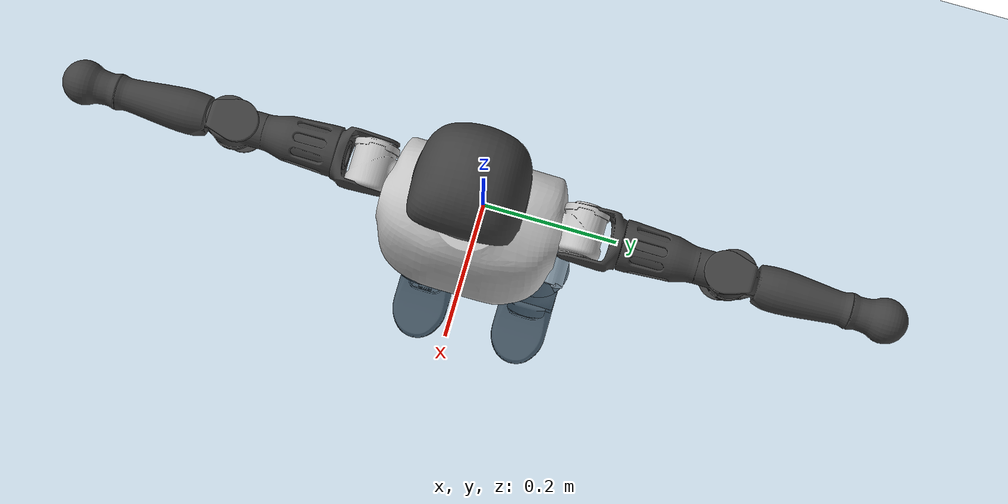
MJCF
<mujoco model="T1">
  <compiler angle="radian" assetdir="assets" balanceinertia="true" inertiafromgeom="false"/>

  <option timestep="0.005" density="1.2" viscosity="2e-05"/>

  <size nkey="1"/>

  <visual>
    <quality shadowsize="8192"/>
    <map shadowclip="0.5"/>
  </visual>

  <default>
    <default class="/">
      <joint armature="0.01" damping="0.01" frictionloss="0.1"/>
      <geom contype="0" conaffinity="0" group="1" solref="-1000 -80"/>
      <site size="0.01 0.005 0.005" group="5"/>
      <general forcelimited="true" biastype="affine" gainprm="25" biasprm="0 -25 -0.6"/>
      <default class="t1">
        <geom rgba="0.25 0.25 0.25 1"/>
        <default class="visual">
          <geom type="mesh" group="2"/>
        </default>
        <default class="collision">
          <geom group="3"/>
        </default>
        <default class="foot">
          <geom size="0.1115 0.05 0.015" type="box" condim="6" group="4" priority="1" solimp="0.015 1 0.015"/>
        </default>
        <default class="reward_collision_sphere">
          <geom group="5" rgba="1 0 0 1"/>
        </default>
      </default>
    </default>
  </default>

  <asset>
    <texture type="skybox" colorspace="auto" name="//unnamed_texture_0" builtin="gradient" rgb1="0.95 0.95 0.95" rgb2="0.95 0.95 0.95" width="100" height="600"/>
    <texture type="2d" colorspace="auto" name="texplane" builtin="checker" rgb1="0.345 0.575 0.748" rgb2="0.345 0.575 0.748" markrgb="1 1 1" width="512" height="512"/>
    <material name="MatPlane" class="/" texture="texplane" texuniform="true" texrepeat="2 2" specular="0.9"/>
    <mesh name="Trunk" class="/" file="Trunk.stl"/>
    <mesh name="H1" class="/" file="H1.stl"/>
    <mesh name="H2" class="/" file="H2.stl"/>
    <mesh name="AL1" class="/" file="AL1.stl"/>
    <mesh name="AL2" class="/" file="AL2.stl"/>
    <mesh name="AL3" class="/" file="AL3.stl"/>
    <mesh name="left_hand_link" class="/" file="left_hand_link.stl"/>
    <mesh name="AR1" class="/" file="AR1.stl"/>
    <mesh name="AR2" class="/" file="AR2.stl"/>
    <mesh name="AR3" class="/" file="AR3.stl"/>
    <mesh name="right_hand_link" class="/" file="right_hand_link.stl"/>
    <mesh name="Waist" class="/" file="Waist.stl"/>
    <mesh name="Hip_Pitch_Left" class="/" file="Hip_Pitch_Left.stl"/>
    <mesh name="Hip_Roll_Left" class="/" file="Hip_Roll_Left.stl"/>
    <mesh name="Hip_Yaw_Left" class="/" file="Hip_Yaw_Left.stl"/>
    <mesh name="Shank_Left" class="/" file="Shank_Left.stl"/>
    <mesh name="Ankle_Cross_Left" class="/" file="Ankle_Cross_Left.stl"/>
    <mesh name="left_foot_link" class="/" file="left_foot_link.stl"/>
    <mesh name="Hip_Pitch_Right" class="/" file="Hip_Pitch_Right.stl"/>
    <mesh name="Hip_Roll_Right" class="/" file="Hip_Roll_Right.stl"/>
    <mesh name="Hip_Yaw_Right" class="/" file="Hip_Yaw_Right.stl"/>
    <mesh name="Shank_Right" class="/" file="Shank_Right.stl"/>
    <mesh name="Ankle_Cross_Right" class="/" file="Ankle_Cross_Right.stl"/>
    <mesh name="right_foot_link" class="/" file="right_foot_link.stl"/>
  </asset>

  <worldbody>
    <geom name="floor" class="/" size="100 100 0.125" type="plane" group="0" material="MatPlane"/>
    <light name="toplight_shadow" class="/" pos="0 0 5" dir="0.0990148 0.0990148 -0.990148" type="directional" ambient="0.04 0.04 0.04" diffuse="0.55 0.55 0.55" specular="0.12 0.12 0.12"/>
    <light name="toplight_fill" class="/" pos="0 0 5" dir="0.0990148 0.0990148 -0.990148" type="directional" castshadow="false" ambient="0.04 0.04 0.04" diffuse="0.3 0.3 0.3" specular="0.08 0.08 0.08"/>
    <body name="trunk" childclass="t1" pos="0.00196383 -0.000137911 0.000971827" quat="1 0.000629122 0.000325803 0.000416819">
      <inertial pos="0.0310922 -0.000599167 0.107534" quat="0.999806 0.0110089 -0.0160483 0.00308846" mass="7.03084" diaginertia="0.0054441 0.0527568 0.0687077"/>
      <joint name="//unnamed_joint_0" type="free" armature="0" damping="0" frictionloss="0"/>
      <geom name="//unnamed_geom_1" class="visual" rgba="0.76 0.76 0.76 1" mesh="Trunk"/>
      <geom name="//unnamed_geom_2" class="collision" size="0.0635608 0.0847477 0.127122" pos="0.0340289 0 0.125665" type="box"/>
      <geom name="//unnamed_geom_3" class="reward_collision_sphere" size="0.0974598" pos="0.0340289 0 0.104721"/>
      <geom name="//unnamed_geom_4" class="reward_collision_sphere" size="0.0127122" pos="0.0340289 0.0788862 0"/>
      <geom name="//unnamed_geom_5" class="reward_collision_sphere" size="0.0127122" pos="0.0340289 -0.0788862 0"/>
      <geom name="//unnamed_geom_6" class="reward_collision_sphere" size="0.0127122" pos="0.0340289 0.0993038 0.188498"/>
      <geom name="//unnamed_geom_7" class="reward_collision_sphere" size="0.0127122" pos="0.0340289 -0.0993038 0.188498"/>
      <site name="imu" pos="0.0037037 -0.0137982 0.0074787" size="0.00847477"/>
      <camera name="track" pos="0 -1.85615 0" quat="0.707107 0.707107 0 0" mode="trackcom"/>
      <camera name="ego_camera" pos="0.069192 0 0.439828" quat="-0.5 -0.5 0.5 0.5"/>
      <body name="H1" pos="0.0372663 0.000901528 0.256219" quat="0.999999 0.000426212 -0.000488859 0.00103582">
        <inertial pos="-0.00279324 0.000262695 0.0573829" quat="0.762471 -0.00969522 0.00326598 0.646941" mass="0.27668" diaginertia="1.42041e-05 0.000158445 0.000193361"/>
        <joint name="AAHead_yaw" pos="0 0 0" axis="0.0012451 -0.00147654 0.999998" stiffness="0.00155641" range="-1.5617 1.62108" armature="0.00847305" damping="0.0183259" frictionloss="0.0952471"/>
        <geom name="//unnamed_geom_8" class="visual" mesh="H1"/>
        <body name="H2" pos="0.00180438 0.000684014 0.0647352" quat="1 0.000395355 0.000137728 -0.000189682">
          <inertial pos="0.00480302 0.00255405 0.103948" quat="0.987201 0.107837 -0.081659 -0.0844871" mass="0.376164" diaginertia="0.000111721 0.00126878 0.00217135"/>
          <joint name="Head_pitch" pos="0 0 0" axis="0.00104771 -0.999999 0.00109236" range="-1.17402 0.349611" armature="0.00917587" damping="0.0122397" frictionloss="0.0866771"/>
          <geom name="//unnamed_geom_9" class="visual" mesh="H2"/>
          <geom name="//unnamed_geom_10" class="collision" size="0.0677981" pos="0.00567148 0 0.115193"/>
          <geom name="//unnamed_geom_11" class="reward_collision_sphere" size="0.0762729" pos="0.011343 0 0.104721"/>
        </body>
      </body>
      <body name="AL1" pos="0.0365032 0.0982669 0.231935" quat="1 5.38418e-05 0.00046655 2.00263e-07">
        <inertial pos="0.000969166 0.0409905 -0.00112237" quat="0.498096 0.501804 -0.498925 0.501165" mass="0.343629" diaginertia="8.50672e-05 0.000945875 0.00038468"/>
        <joint name="Left_Shoulder_Pitch" pos="0 0 0" axis="-0.00836982 0.999953 0.00480919" stiffness="0.00505109" range="-3.25239 1.22475" armature="0.00927988" damping="0.0145403" frictionloss="0.0771464"/>
        <geom name="//unnamed_geom_12" class="visual" rgba="0.76 0.76 0.76 1" mesh="AL1"/>
        <body name="AL2" pos="0.00305641 0.0441095 0.00223054" quat="0.999999 -0.000341969 0.000930868 0.00113924">
          <inertial pos="0.00216464 0.0327686 0.00250974" quat="0.487809 0.511971 -0.487752 0.511885" mass="0.0953987" diaginertia="2.36967e-05 0.00023164 0.000214976"/>
          <joint name="Left_Shoulder_Roll" pos="0 0 0" axis="-0.999935 0.00117854 0.0113625" range="-1.53392 1.73573" armature="0.00871607" damping="0" frictionloss="0.082219"/>
          <geom name="//unnamed_geom_13" class="visual" mesh="AL2"/>
          <body name="AL3" pos="-0.000569208 0.0571198 0.00297674" quat="0.999999 0.00036128 0.00100854 0.000475865">
            <inertial pos="-5.35059e-05 0.0813503 0.000912579" quat="0.706816 0.707381 -0.00451534 -0.00164463" mass="0.628868" diaginertia="0.000785376 0.00913526 0.000806363"/>
            <joint name="Left_Elbow_Pitch" pos="0 0 0" axis="-0.00417354 -0.999991 0.00122917" range="-2.27654 2.2809" armature="0.00835163" damping="0" frictionloss="0.0888238"/>
            <geom name="//unnamed_geom_14" class="visual" mesh="AL3"/>
            <geom name="//unnamed_geom_15" class="collision" size="0.0254243 0.0635608" pos="0 0.0464036 0" quat="0.707105 0.707108 0 0" type="cylinder"/>
            <geom name="//unnamed_geom_16" class="reward_collision_sphere" size="0.0305092"/>
            <body name="left_hand_link" pos="0.00358009 0.137098 0.00112149" quat="1 0.000277153 0.00051432 0.000254955">
              <inertial pos="-0.00212487 0.101198 -0.000715318" quat="0.710294 0.703778 0.00989952 -0.00897834" mass="0.192951" diaginertia="0.000479113 0.00553965 0.000269628"/>
              <joint name="Left_Elbow_Yaw" pos="0 0 0" axis="-0.00722038 -0.00239235 0.999971" stiffness="0.0113537" range="-2.39054 -0.0448625" armature="0.00906389" damping="0.0175972" frictionloss="0.0891919"/>
              <geom name="//unnamed_geom_17" class="visual" mesh="left_hand_link"/>
              <geom name="//unnamed_geom_18" class="collision" size="0.0254243 0.0741542" pos="0 0.120649 0" quat="0.707105 0.707108 0 0" type="cylinder"/>
              <geom name="//unnamed_geom_19" class="reward_collision_sphere" size="0.0423738"/>
              <geom name="//unnamed_geom_20" class="reward_collision_sphere" size="0.0296617" pos="0 0.102088 0"/>
              <geom name="//unnamed_geom_21" class="reward_collision_sphere" size="0.0296617" pos="0 0.199536 0"/>
            </body>
          </body>
        </body>
      </body>
      <body name="AR1" pos="0.0287737 -0.0982177 0.229232" quat="0.999999 0.000675579 -7.96989e-05 0.000867769">
        <inertial pos="0.00188598 -0.0394256 0.000228229" quat="0.504049 0.495402 -0.50409 0.496392" mass="0.321677" diaginertia="7.7392e-05 0.000894335 0.000371562"/>
        <joint name="Right_Shoulder_Pitch" pos="0 0 0" axis="0.00208372 -0.999996 0.00188604" stiffness="0.00525403" range="-1.23775 3.36103" armature="0.0091532" damping="0.0135514" frictionloss="0.0746925"/>
        <geom name="//unnamed_geom_22" class="visual" rgba="0.76 0.76 0.76 1" mesh="AR1"/>
        <body name="AR2" pos="-0.00343181 -0.040005 0.000132183" quat="1 1.07673e-06 -0.000323909 -5.14951e-05">
          <inertial pos="-0.000372623 -0.0340662 0.00105578" quat="0.512076 0.487444 -0.511623 0.488282" mass="0.0985124" diaginertia="2.40506e-05 0.000246787 0.000235579"/>
          <joint name="Right_Shoulder_Roll" pos="0 0 0" axis="-0.999799 0.0153848 -0.012823" stiffness="0.00565217" range="-1.76964 1.54989" armature="0.00949796" damping="0.00320254" frictionloss="0.0876218"/>
          <geom name="//unnamed_geom_23" class="visual" mesh="AR2"/>
          <body name="AR3" pos="-0.00225951 -0.0543307 0.00208685" quat="1 -0.000117327 4.28275e-05 5.82328e-05">
            <inertial pos="0.000364065 -0.0766329 0.000417303" quat="0.708734 0.705364 0.0114131 0.00519508" mass="0.618218" diaginertia="0.000738196 0.00875361 0.000771826"/>
            <joint name="Right_Elbow_Pitch" pos="0 0 0" axis="0.0125572 0.999921 8.58411e-05" range="-2.27783 2.2268" armature="0.00865604" damping="0" frictionloss="0.0872985"/>
            <geom name="//unnamed_geom_24" class="visual" mesh="AR3"/>
            <geom name="//unnamed_geom_25" class="collision" size="0.0254243 0.0635608" pos="0 -0.0464036 0" quat="0.707105 0.707108 0 0" type="cylinder"/>
            <geom name="//unnamed_geom_26" class="reward_collision_sphere" size="0.0305092"/>
            <body name="right_hand_link" pos="0.00153424 -0.134105 0.000711657" quat="1 0.000133277 -0.000239634 -2.8687e-05">
              <inertial pos="-0.00195349 -0.103166 0.00100688" quat="0.706402 0.707809 0.000653389 0.00142934" mass="0.198957" diaginertia="0.000484687 0.00552614 0.00025817"/>
              <joint name="Right_Elbow_Yaw" pos="0 0 0" axis="-0.00745334 0.00235702 0.999969" stiffness="0.00492467" range="0.0476241 2.38285" armature="0.00826705" damping="0" frictionloss="0.085466"/>
              <geom name="//unnamed_geom_27" class="visual" mesh="right_hand_link"/>
              <geom name="//unnamed_geom_28" class="collision" size="0.0254243 0.0741542" pos="0 -0.120649 0" quat="0.707105 0.707108 0 0" type="cylinder"/>
              <geom name="//unnamed_geom_29" class="reward_collision_sphere" size="0.0423738"/>
              <geom name="//unnamed_geom_30" class="reward_collision_sphere" size="0.0296617" pos="0 -0.102088 0"/>
              <geom name="//unnamed_geom_31" class="reward_collision_sphere" size="0.0296617" pos="0 -0.199536 0"/>
            </body>
          </body>
        </body>
      </body>
      <body name="Waist" pos="0.0344976 0.000540103 -0.118109" quat="1 -0.000559882 -0.000475526 -0.000392881">
        <inertial pos="-0.000358304 -0.000421353 0.00811026" quat="0.982923 0.0100597 -0.183525 0.00897439" mass="1.52703" diaginertia="0.000305526 0.00371254 0.00578681"/>
        <joint name="Waist" pos="0 0 0" axis="-0.00709137 0.00127414 0.999974" range="-1.61396 1.52209" armature="0.00821724" damping="0.0250479" frictionloss="0.0852642"/>
        <geom name="//unnamed_geom_32" class="visual" mesh="Waist"/>
        <body name="Hip_Pitch_Left" pos="-0.000413149 0.100405 -0.00265805" quat="1 0.000284544 0.000116918 -0.000174626">
          <inertial pos="0.000178104 -0.00789374 -0.0166284" quat="0.97677 0.212919 0.0241511 -0.0016915" mass="0.624415" diaginertia="0.000103265 0.00102092 0.00157523"/>
          <joint name="Left_Hip_Pitch" pos="0 0 0" axis="0.0131713 0.999843 -0.0118677" stiffness="0.0120381" range="-1.85187 1.57942" armature="0.00913879" damping="0.0114049" frictionloss="0.0848668"/>
          <geom name="//unnamed_geom_33" class="visual" rgba="0.76 0.76 0.76 1" mesh="Hip_Pitch_Left"/>
          <body name="Hip_Roll_Left" pos="-9.62794e-05 0.000831437 -0.0207675" quat="1 1.45579e-05 1.95259e-05 7.72576e-05">
            <inertial pos="0.00308493 -0.0011514 -0.0568271" quat="0.704828 -0.00749817 -0.00786618 0.709295" mass="0.234985" diaginertia="0.00010592 0.00106547 0.000669549"/>
            <joint name="Left_Hip_Roll" pos="0 0 0" axis="-0.999998 -0.00143471 0.0012301" stiffness="0.0119792" range="-1.58279 0.195452" armature="0.00739206" damping="0.000426584" frictionloss="0.0730508"/>
            <geom name="//unnamed_geom_34" class="visual" mesh="Hip_Roll_Left"/>
            <geom name="//unnamed_geom_35" class="reward_collision_sphere" size="0.0466112"/>
            <body name="Hip_Yaw_Left" pos="0.00307276 -0.00340227 -0.0837065" quat="1 -9.37602e-06 4.78404e-06 -2.38955e-05">
              <inertial pos="-0.00300268 -0.00360644 -0.0962692" quat="0.690154 -0.0276888 -0.0296937 0.722523" mass="1.3077" diaginertia="0.00146985 0.016916 0.00319533"/>
              <joint name="Left_Hip_Yaw" pos="0 0 0" axis="0.0109302 -0.00786473 -0.999909" stiffness="0.00807392" range="-1.02865 1.01182" armature="0.00855643" damping="0.0144501" frictionloss="0.0881022"/>
              <geom name="//unnamed_geom_36" class="visual" mesh="Hip_Yaw_Left"/>
              <geom name="//unnamed_geom_37" class="collision" size="0.0423738 0.0677981" type="cylinder"/>
              <body name="Shank_Left" pos="-0.00501328 -5.67859e-05 -0.143635" quat="1 0.000264474 0.000158923 -4.2257e-05">
                <inertial pos="-0.00215566 0.00249354 -0.127542" quat="0.997204 0.000635178 -0.0299575 0.0684517" mass="1.01185" diaginertia="0.0020185 0.0229237 0.00236796"/>
                <joint name="Left_Knee_Pitch" pos="0 0 0" axis="-0.00277562 0.999996 0.00013728" range="-0.0226879 2.36733" armature="0.00784453" damping="0.0208006" frictionloss="0.0813253"/>
                <geom name="//unnamed_geom_38" class="visual" mesh="Shank_Left"/>
                <geom name="//unnamed_geom_39" class="collision" size="0.0423738 0.0635608" pos="0 0 -0.125665" type="cylinder"/>
                <geom name="//unnamed_geom_40" class="reward_collision_sphere" size="0.055086"/>
                <body name="Ankle_Cross_Left" pos="-0.000575307 -0.00268304 -0.290539" quat="1 -0.000131502 1.01124e-05 -9.75874e-05">
                  <inertial pos="-0.00246422 0.0017431 -0.00884117" quat="0.442393 0.55018 0.553116 0.442327" mass="0.0459687" diaginertia="1.81376e-06 1.82647e-05 1.50735e-05"/>
                  <joint name="Left_Ankle_Pitch" pos="0 0 0" axis="-0.0042529 0.999984 0.00371659" range="-0.875053 0.31272" armature="0.00791058" damping="0" frictionloss="0.0732209"/>
                  <geom name="//unnamed_geom_41" class="visual" mesh="Ankle_Cross_Left"/>
                  <body name="left_foot_link" pos="-0.00110735 0.000204192 -0.0156165" quat="1 -0.000148951 -0.000180381 -5.54593e-05">
                    <inertial pos="0.000759882 0.00180067 -0.00941211" quat="0.00248824 0.622115 0.00451009 0.782909" mass="0.410311" diaginertia="0.000160897 0.00169864 0.00275374"/>
                    <joint name="Left_Ankle_Roll" pos="0 0 0" axis="-0.999995 -0.00177376 0.00254155" stiffness="0.0062047" range="-0.391565 0.388818" armature="0.00878752" damping="0.0199739" frictionloss="0.0797477"/>
                    <geom name="//unnamed_geom_42" class="visual" mesh="left_foot_link"/>
                    <geom name="left_foot" class="foot" size="0.0938209 0.0456042 0.0116093" pos="0.00567148 0 -0.0157081"/>
                    <geom name="//unnamed_geom_44" class="reward_collision_sphere" size="0.0440688" pos="0.00567148 0 -0.0157081"/>
                    <geom name="//unnamed_geom_45" class="reward_collision_sphere" size="0.0254243" pos="0.0538791 -0.0213457 -0.0157081"/>
                    <geom name="//unnamed_geom_46" class="reward_collision_sphere" size="0.0254243" pos="-0.0397004 -0.0213457 -0.0157081"/>
                    <site name="left_foot" class="foot" pos="0.00567148 0 -0.0157081" size="0.00847477"/>
                  </body>
                </body>
              </body>
            </body>
          </body>
        </body>
        <body name="Hip_Pitch_Right" pos="-0.00230859 -0.0984383 -0.00207505" quat="1 -0.000258014 0.000508167 0.0002774">
          <inertial pos="-0.000702399 0.00705018 -0.0193707" quat="0.972397 -0.233303 0.00316206 -0.0020029" mass="0.626821" diaginertia="0.000107244 0.00100234 0.00162566"/>
          <joint name="Right_Hip_Pitch" pos="0 0 0" axis="-0.00658237 -0.999914 -0.0113473" range="-1.52622 1.78018" armature="0.0083609" damping="0.0120416" frictionloss="0.0871142"/>
          <geom name="//unnamed_geom_47" class="visual" rgba="0.76 0.76 0.76 1" mesh="Hip_Pitch_Right"/>
          <body name="Hip_Roll_Right" pos="-0.00109449 0.000248452 -0.0183559" quat="1 0.00014584 -0.00017864 -0.000310306">
            <inertial pos="-0.00131266 -0.0016007 -0.0552792" quat="0.709778 -0.013401 -0.0157397 0.704122" mass="0.232028" diaginertia="0.000100951 0.000996222 0.000638421"/>
            <joint name="Right_Hip_Roll" pos="0 0 0" axis="-0.999992 0.0020842 -0.00327443" range="-0.203415 1.52504" armature="0.00747244" damping="0.016295" frictionloss="0.0925096"/>
            <geom name="//unnamed_geom_48" class="visual" mesh="Hip_Roll_Right"/>
            <geom name="//unnamed_geom_49" class="reward_collision_sphere" size="0.0466112"/>
            <body name="Hip_Yaw_Right" pos="0.00276661 0.00288563 -0.0866125" quat="1 -1.18515e-05 -2.79871e-05 0.000174715">
              <inertial pos="-0.00131455 -0.000643455 -0.0958214" quat="0.713199 -0.0383563 -0.0276611 0.699365" mass="1.31887" diaginertia="0.0015044 0.0169254 0.00311477"/>
              <joint name="Right_Hip_Yaw" pos="0 0 0" axis="-0.000558731 -0.000510392 -1" range="-1.05441 1.05475" armature="0.00782382" damping="0" frictionloss="0.0857958"/>
              <geom name="//unnamed_geom_50" class="visual" mesh="Hip_Yaw_Right"/>
              <geom name="//unnamed_geom_51" class="collision" size="0.0423738 0.0677981" type="cylinder"/>
              <body name="Shank_Right" pos="-0.00412364 0.00100209 -0.139222" quat="1 -8.47819e-05 -1.40552e-05 -0.000128962">
                <inertial pos="-0.00198816 -0.00262994 -0.131225" quat="0.999346 0.00101949 -0.0248216 -0.0262653" mass="1.11967" diaginertia="0.00208311 0.024024 0.00243579"/>
                <joint name="Right_Knee_Pitch" pos="0 0 0" axis="0.00295922 -0.999851 0.0170326" stiffness="0.00170566" range="-2.39172 -0.00722375" armature="0.00861366" damping="0.0251961" frictionloss="0.0732736"/>
                <geom name="//unnamed_geom_52" class="visual" mesh="Shank_Right"/>
                <geom name="//unnamed_geom_53" class="collision" size="0.0423738 0.0635608" pos="0 0 -0.125665" type="cylinder"/>
                <geom name="//unnamed_geom_54" class="reward_collision_sphere" size="0.055086"/>
                <body name="Ankle_Cross_Right" pos="0.00180854 0.00110732 -0.294134" quat="1 -7.82812e-05 -6.44024e-05 -2.43023e-05">
                  <inertial pos="-0.00446791 -0.00070414 -0.00589293" quat="0.439397 0.55273 0.551844 0.443721" mass="0.0438248" diaginertia="1.68748e-06 1.79696e-05 1.44078e-05"/>
                  <joint name="Right_Ankle_Pitch" pos="0 0 0" axis="-0.00240132 -0.999978 -0.00622408" stiffness="0.0094373" range="-0.295502 0.86761" armature="0.00925505" damping="0.0129164" frictionloss="0.0885323"/>
                  <geom name="//unnamed_geom_55" class="visual" mesh="Ankle_Cross_Right"/>
                  <body name="right_foot_link" pos="0.0033372 8.89827e-05 -0.0125905" quat="1 3.94965e-05 -2.14161e-05 2.91062e-05">
                    <inertial pos="-0.00206983 0.00227489 -0.00948192" quat="0.000770841 0.629306 0.00243209 0.777153" mass="0.405303" diaginertia="0.000158564 0.00169166 0.00276813"/>
                    <joint name="Right_Ankle_Roll" pos="0 0 0" axis="-0.99999 0.00455038 0.000509324" range="-0.419456 0.397942" armature="0.00787786" damping="0.00272115" frictionloss="0.0766029"/>
                    <geom name="//unnamed_geom_56" class="visual" mesh="right_foot_link"/>
                    <geom name="right_foot" class="foot" size="0.111965 0.0467772 0.0141644" pos="0.00567148 0 -0.0157081"/>
                    <geom name="//unnamed_geom_58" class="reward_collision_sphere" size="0.0338991"/>
                    <geom name="//unnamed_geom_59" class="reward_collision_sphere" size="0.0254243" pos="0.00567148 0 -0.0157081"/>
                    <geom name="//unnamed_geom_60" class="reward_collision_sphere" size="0.0254243" pos="0.0538791 0.0213457 -0.0157081"/>
                    <geom name="//unnamed_geom_61" class="reward_collision_sphere" size="0.0254243" pos="-0.0397004 0.0213457 -0.0157081"/>
                    <site name="right_foot" class="foot" pos="0.00567148 0 -0.0157081" size="0.00847477"/>
                  </body>
                </body>
              </body>
            </body>
          </body>
        </body>
      </body>
    </body>
  </worldbody>

  <contact>
    <pair class="/" geom1="floor" geom2="left_foot" name="//unnamed_contact_0"/>
    <pair class="/" geom1="floor" geom2="right_foot" name="//unnamed_contact_1"/>
  </contact>

  <actuator>
    <general name="AAHead_yaw" class="/" joint="AAHead_yaw" forcerange="-6.32041 6.32041" gainprm="23.2359" biasprm="0 -23.2359 -0.491396"/>
    <general name="Head_pitch" class="/" joint="Head_pitch" forcerange="-6.3343 6.3343" gainprm="23.2359" biasprm="0 -23.2359 -0.491396"/>
    <general name="Left_Shoulder_Pitch" class="/" joint="Left_Shoulder_Pitch" forcerange="-15.195 15.195" gainprm="23.2359" biasprm="0 -23.2359 -0.491396"/>
    <general name="Left_Shoulder_Roll" class="/" joint="Left_Shoulder_Roll" forcerange="-15.5063 15.5063" gainprm="23.2359" biasprm="0 -23.2359 -0.491396"/>
    <general name="Left_Elbow_Pitch" class="/" joint="Left_Elbow_Pitch" forcerange="-16.0953 16.0953" gainprm="23.2359" biasprm="0 -23.2359 -0.491396"/>
    <general name="Left_Elbow_Yaw" class="/" joint="Left_Elbow_Yaw" forcerange="-16.7088 16.7088" gainprm="23.2359" biasprm="0 -23.2359 -0.491396"/>
    <general name="Right_Shoulder_Pitch" class="/" joint="Right_Shoulder_Pitch" forcerange="-13.7371 13.7371" gainprm="23.2359" biasprm="0 -23.2359 -0.491396"/>
    <general name="Right_Shoulder_Roll" class="/" joint="Right_Shoulder_Roll" forcerange="-14.0092 14.0092" gainprm="23.2359" biasprm="0 -23.2359 -0.491396"/>
    <general name="Right_Elbow_Pitch" class="/" joint="Right_Elbow_Pitch" forcerange="-15.5765 15.5765" gainprm="23.2359" biasprm="0 -23.2359 -0.491396"/>
    <general name="Right_Elbow_Yaw" class="/" joint="Right_Elbow_Yaw" forcerange="-16.4754 16.4754" gainprm="23.2359" biasprm="0 -23.2359 -0.491396"/>
    <general name="Waist" class="/" joint="Waist" forcerange="-24.1058 24.1058" gainprm="23.2359" biasprm="0 -23.2359 -0.491396"/>
    <general name="Left_Hip_Pitch" class="/" joint="Left_Hip_Pitch" forcerange="-37.6038 37.6038" gainprm="23.2359" biasprm="0 -23.2359 -0.491396"/>
    <general name="Left_Hip_Roll" class="/" joint="Left_Hip_Roll" forcerange="-27.0038 27.0038" gainprm="23.2359" biasprm="0 -23.2359 -0.491396"/>
    <general name="Left_Hip_Yaw" class="/" joint="Left_Hip_Yaw" forcerange="-24.137 24.137" gainprm="23.2359" biasprm="0 -23.2359 -0.491396"/>
    <general name="Left_Knee_Pitch" class="/" joint="Left_Knee_Pitch" forcerange="-55.7209 55.7209" gainprm="23.2359" biasprm="0 -23.2359 -0.491396"/>
    <general name="Left_Ankle_Pitch" class="/" joint="Left_Ankle_Pitch" forcerange="-15.3228 15.3228" gainprm="23.2359" biasprm="0 -23.2359 -0.491396"/>
    <general name="Left_Ankle_Roll" class="/" joint="Left_Ankle_Roll" forcerange="-13.0677 13.0677" gainprm="23.2359" biasprm="0 -23.2359 -0.491396"/>
    <general name="Right_Hip_Pitch" class="/" joint="Right_Hip_Pitch" forcerange="-38.4096 38.4096" gainprm="23.2359" biasprm="0 -23.2359 -0.491396"/>
    <general name="Right_Hip_Roll" class="/" joint="Right_Hip_Roll" forcerange="-24.0645 24.0645" gainprm="23.2359" biasprm="0 -23.2359 -0.491396"/>
    <general name="Right_Hip_Yaw" class="/" joint="Right_Hip_Yaw" forcerange="-22.9076 22.9076" gainprm="23.2359" biasprm="0 -23.2359 -0.491396"/>
    <general name="Right_Knee_Pitch" class="/" joint="Right_Knee_Pitch" forcerange="-48.6302 48.6302" gainprm="23.2359" biasprm="0 -23.2359 -0.491396"/>
    <general name="Right_Ankle_Pitch" class="/" joint="Right_Ankle_Pitch" forcerange="-16.8395 16.8395" gainprm="23.2359" biasprm="0 -23.2359 -0.491396"/>
    <general name="Right_Ankle_Roll" class="/" joint="Right_Ankle_Roll" forcerange="-13.9995 13.9995" gainprm="23.2359" biasprm="0 -23.2359 -0.491396"/>
  </actuator>

  <sensor>
    <gyro site="imu" name="imu_angular_velocity"/>
    <velocimeter site="imu" name="imu_linear_velocity"/>
    <framelinvel objtype="site" objname="left_foot" name="left_foot_global_linear_velocity"/>
    <framelinvel objtype="site" objname="right_foot" name="right_foot_global_linear_velocity"/>
  </sensor>

  <keyframe>
    <key name="home" qpos="0 0 0.6385 1 0 0 0 0 0 0 1.4 0 -0.4 0 -1.4 0 0.4 0 -0.4 0 0 0.8 -0.4 0 0.4 0 0 -0.8 0.4 0"/>
  </keyframe>
</mujoco>
